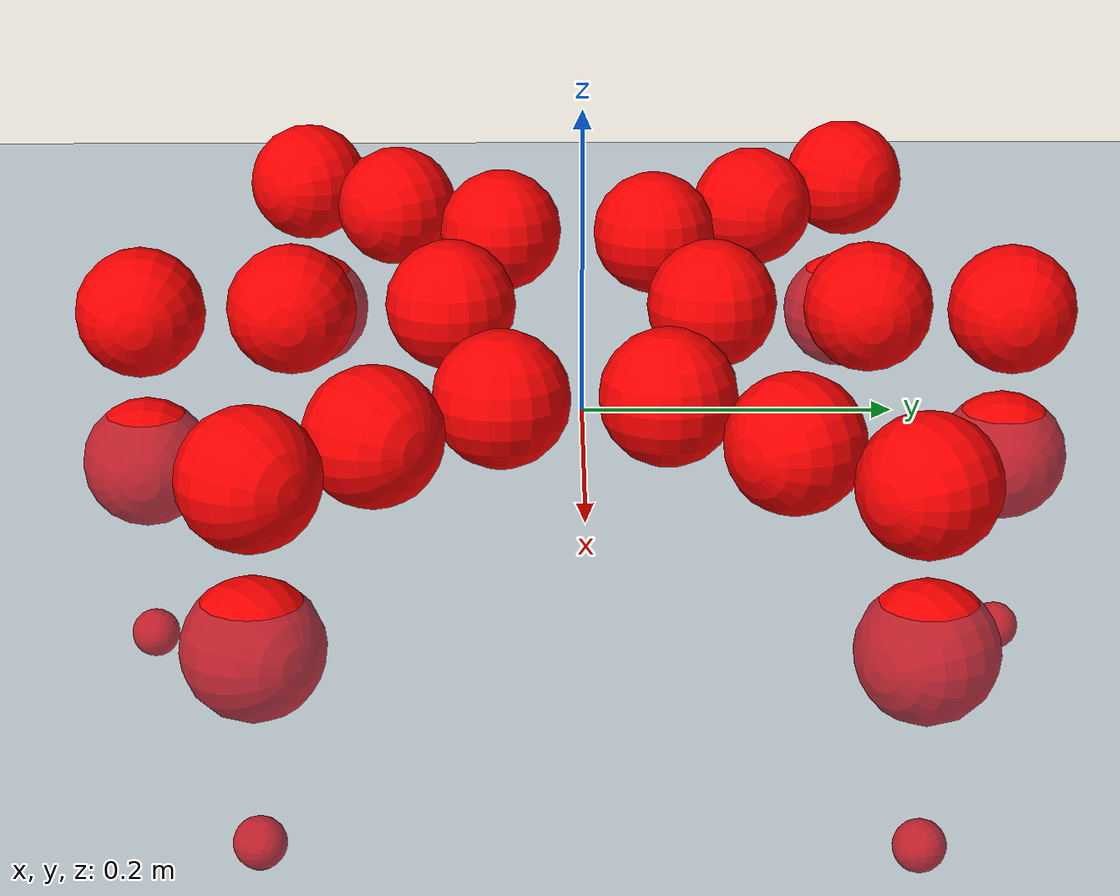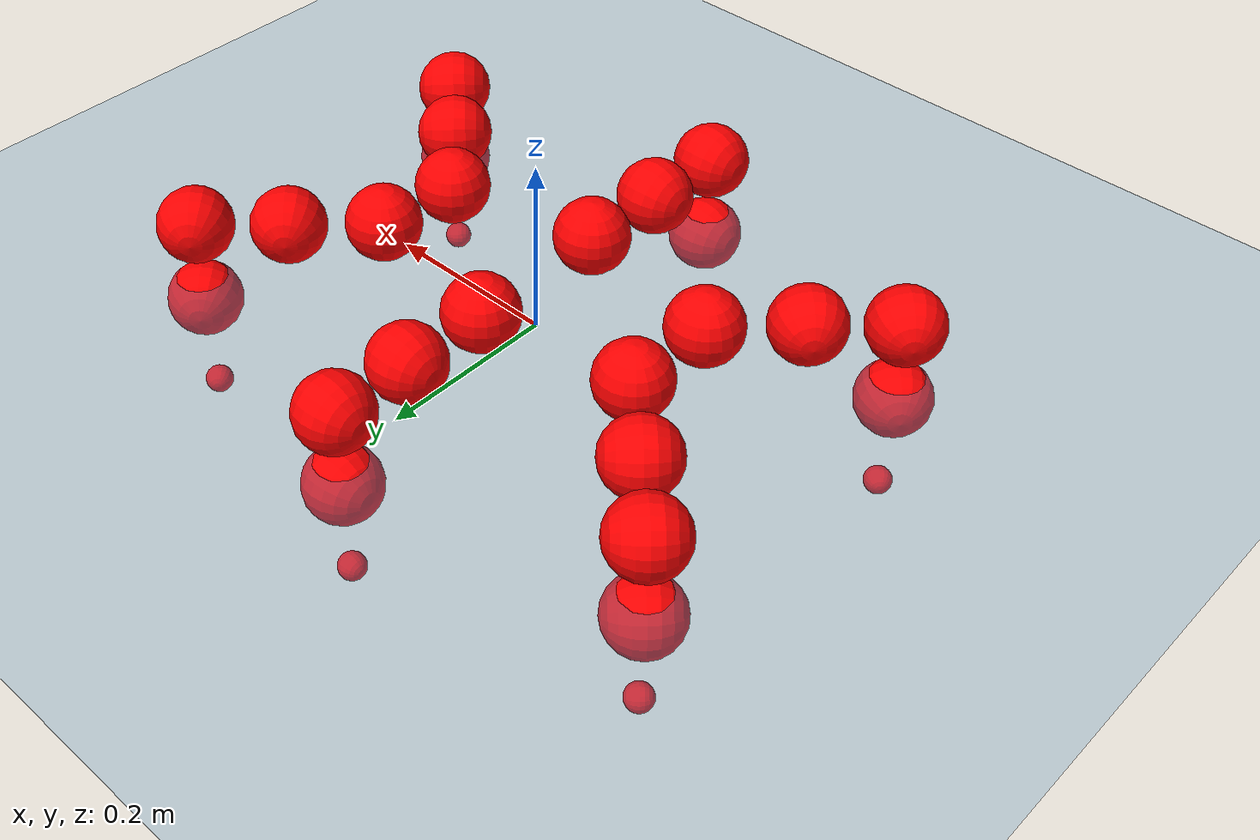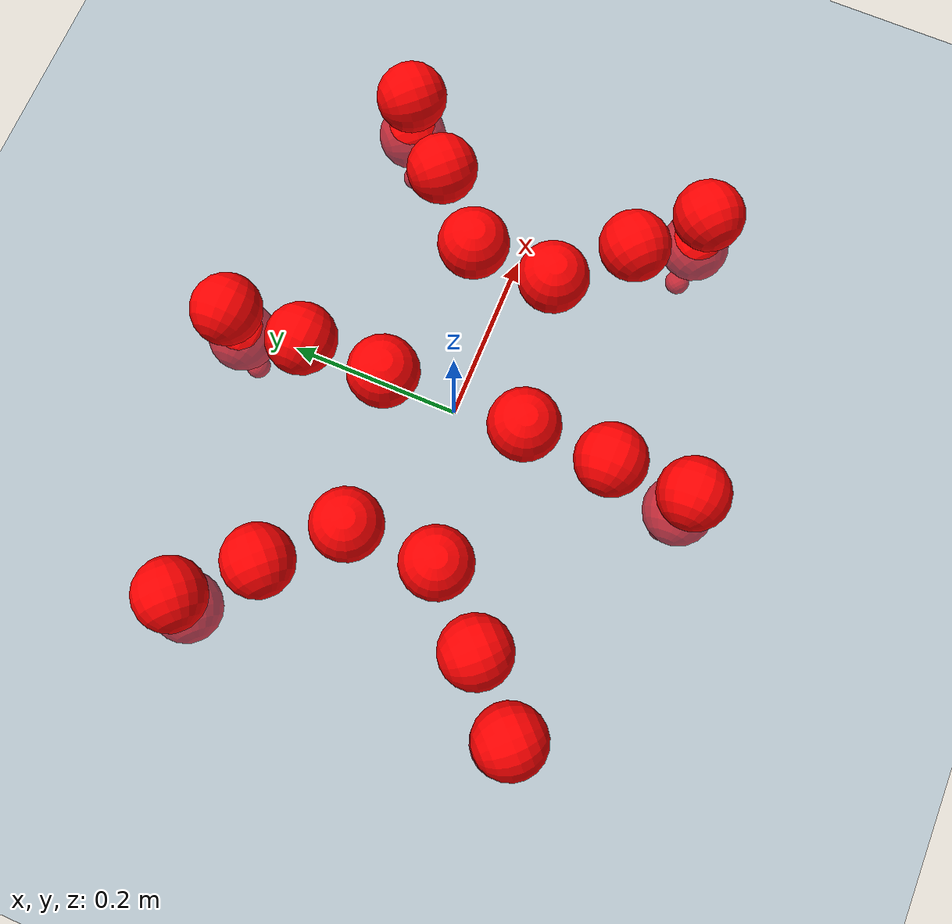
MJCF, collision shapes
<mujoco model="Golem">
  <compiler angle="radian" assetdir="assets" balanceinertia="true" inertiafromgeom="false"/>

  <option timestep="0.005" density="1.2" viscosity="2e-05"/>

  <size nkey="1"/>

  <visual>
    <quality shadowsize="8192"/>
    <map shadowclip="0.5"/>
  </visual>

  <default>
    <default class="/">
      <joint armature="0.01" damping="0.01" frictionloss="0.01"/>
      <geom contype="0" conaffinity="0" group="1" solref="-1000 -80"/>
      <site size="0.01 0.005 0.005" group="5"/>
      <general forcelimited="true" biastype="affine" gainprm="25" biasprm="0 -25 -0.5"/>
      <default class="visual">
        <geom type="mesh" group="2"/>
      </default>
      <default class="collision">
        <geom group="3"/>
      </default>
      <default class="foot">
        <geom size="0.01 0 0" condim="6" group="4" priority="1" solimp="0.015 1 0.01"/>
      </default>
      <default class="reward_collision_sphere">
        <geom group="5" rgba="1 0 0 1"/>
      </default>
    </default>
  </default>

  <asset>
    <texture type="skybox" colorspace="auto" name="//unnamed_texture_0" builtin="gradient" rgb1="0.95 0.95 0.95" rgb2="0.95 0.95 0.95" width="100" height="600"/>
    <texture type="2d" colorspace="auto" name="texplane" builtin="checker" rgb1="0.345 0.575 0.748" rgb2="0.345 0.575 0.748" markrgb="1 1 1" width="512" height="512"/>
    <material name="MatPlane" class="/" texture="texplane" texuniform="true" texrepeat="2 2" specular="0.9"/>
    <mesh name="body" class="/" file="body.stl" scale="0.001 0.001 0.001"/>
    <mesh name="coxa" class="/" file="coxa.stl" scale="0.001 0.001 0.001"/>
    <mesh name="femur" class="/" file="femur.stl" scale="0.001 0.001 0.001"/>
    <mesh name="tibia" class="/" file="tibia.stl" scale="0.001 0.001 0.001"/>
    <mesh name="tarsus" class="/" file="tarsus.stl" scale="0.001 0.001 0.001"/>
  </asset>

  <worldbody>
    <geom name="floor" class="/" size="100 100 0.125" type="plane" group="0" material="MatPlane"/>
    <light name="toplight_shadow" class="/" pos="0 0 5" dir="0.0990148 0.0990148 -0.990148" type="directional" ambient="0.04 0.04 0.04" diffuse="0.55 0.55 0.55" specular="0.12 0.12 0.12"/>
    <light name="toplight_fill" class="/" pos="0 0 5" dir="0.0990148 0.0990148 -0.990148" type="directional" castshadow="false" ambient="0.04 0.04 0.04" diffuse="0.3 0.3 0.3" specular="0.08 0.08 0.08"/>
    <body name="trunk" pos="-0.0018334 -0.00140764 -0.00105255" quat="1 -0.000107967 6.61404e-05 -4.13776e-05">
      <inertial pos="0.00220382 -0.00103985 -0.00427674" quat="0.999971 -0.000725913 0.00603592 -0.00460368" mass="4.28823" diaginertia="0.0182705 0.00582439 0.0177946"/>
      <joint name="//unnamed_joint_0" type="free"/>
      <geom name="//unnamed_geom_1" class="/" pos="0 0 0.0713005" quat="1 0 0 0" type="mesh" rgba="0.9 0.9 0.9 1" mesh="body"/>
      <site name="imu" class="/" pos="0.15941 0.00910041 0.110894" size="0.0104593"/>
      <camera name="track" class="/" pos="0 -1.7969 0" quat="0.707107 0.707107 0 0" mode="trackcom"/>
      <camera name="ego_camera" class="/" pos="0.146283 0 0.111407" quat="-0.5 -0.5 0.5 0.5"/>
      <body name="coxa_RR" pos="-0.200305 -0.0772722 0.0711666" quat="0.382622 -0.000132751 -9.17475e-05 -0.923905">
        <inertial pos="5.45468e-05 -0.000805949 1.60932e-05" quat="1 0.000169316 -0.000341694 -0.000165865" mass="0.226164" diaginertia="0.0174489 0.00579229 0.0164312"/>
        <joint name="coxa_joint_RR" class="/" pos="0 0 0" axis="-0.000473011 -0.000944188 -0.999999" range="-3.13908 3.13601" armature="0.0108482" damping="0.00551014" frictionloss="0.0105303"/>
        <geom name="//unnamed_geom_2" class="/" type="mesh" rgba="0.2 0.2 0.2 1" mesh="coxa"/>
        <geom name="//unnamed_geom_3" class="reward_collision_sphere" size="0.0418371" pos="-0.0337577 0 0"/>
        <body name="femur_RR" pos="0.0690185 0.00295922 -0.00208369" quat="0.499959 -0.500534 0.499385 0.500122">
          <inertial pos="-0.00273641 -3.91595e-05 -0.0024491" quat="0.999914 -9.82239e-05 0.012907 0.00241567" mass="0.221972" diaginertia="0.0173552 0.00563346 0.0167019"/>
          <joint name="femur_joint_RR" class="/" pos="0 0 0" axis="-0.000836619 -0.000783413 -0.999999" stiffness="0.00904116" range="-3.12213 3.14574" armature="0.010487" damping="0.00694093" frictionloss="0.010467"/>
          <geom name="//unnamed_geom_4" class="/" type="mesh" rgba="0.9 0.9 0.9 1" mesh="femur"/>
          <geom name="//unnamed_geom_5" class="reward_collision_sphere" size="0.0418371"/>
          <body name="tibia_RR" pos="0.00165287 -0.0972034 -0.00213121" quat="-2.11615e-06 1 -8.16167e-07 -1.54104e-05">
            <inertial pos="0.000328294 0.000338732 -0.00273077" quat="0.999977 0.00207043 -0.00314408 -0.00569567" mass="0.235821" diaginertia="0.0188086 0.00619284 0.0175833"/>
            <joint name="tibia_joint_RR" class="/" pos="0 0 0" axis="-0.00490652 0.0132847 0.9999" range="-3.16906 3.13599" armature="0.0101762" damping="0.00306936" frictionloss="0.00919121"/>
            <geom name="//unnamed_geom_6" class="/" type="mesh" rgba="0.2 0.2 0.2 1" mesh="tibia"/>
            <geom name="//unnamed_geom_7" class="reward_collision_sphere" size="0.0418371"/>
            <body name="tarsus_RR" pos="0.0971704 0.000643964 -0.000180055" quat="1 -8.64961e-05 5.88036e-05 0.000214979">
              <inertial pos="0.0686725 0.000594856 0.000626386" quat="0.508888 0.502524 0.497385 0.49103" mass="0.230388" diaginertia="0.0177124 0.00576341 0.0173521"/>
              <joint name="tarsus_joint_RR" class="/" pos="0 0 0" axis="-0.0096687 0.00277859 0.999949" range="-3.14184 3.1038" armature="0.0104464" damping="0.0447061" frictionloss="0.0100078"/>
              <geom name="//unnamed_geom_8" class="/" type="mesh" rgba="0.9 0.9 0.9 1" mesh="tarsus"/>
              <geom name="foot_1" class="foot" size="0.0105303" pos="0.126029 0 0" quat="0 -0.707107 0 0.707107"/>
              <geom name="//unnamed_geom_10" class="reward_collision_sphere" size="0.0418371"/>
              <geom name="//unnamed_geom_11" class="reward_collision_sphere" size="0.0156889" pos="0.120965 0 0"/>
              <site name="foot_1" class="foot" pos="0.126029 0 0" quat="0 -0.707107 0 0.707107" size="0.0104593"/>
            </body>
          </body>
        </body>
      </body>
      <body name="coxa_RM" pos="0.00108584 -0.116834 0.0732903" quat="0.706287 -0.000109218 0.000806259 -0.707925">
        <inertial pos="-0.00246649 0.000485799 -0.00267843" quat="0.999933 0.0110976 -0.000203173 0.00343045" mass="0.229451" diaginertia="0.0171862 0.0058318 0.0171124"/>
        <joint name="coxa_joint_RM" class="/" pos="0 0 0" axis="-0.00415965 0.00147046 -0.99999" range="-3.11801 3.14929" armature="0.0100335" damping="0.00882949" frictionloss="0.0103194"/>
        <geom name="//unnamed_geom_12" class="/" type="mesh" rgba="0.2 0.2 0.2 1" mesh="coxa"/>
        <geom name="//unnamed_geom_13" class="reward_collision_sphere" size="0.0418371" pos="-0.0337577 0 0"/>
        <body name="femur_RM" pos="0.068365 0.000925373 -0.00231687" quat="0.499515 -0.499381 0.500562 0.50054">
          <inertial pos="0.00278167 -0.000269058 -0.000106814" quat="0.99991 -0.010364 -0.00105525 0.00850951" mass="0.23204" diaginertia="0.017842 0.00567359 0.0173834"/>
          <joint name="femur_joint_RM" class="/" pos="0 0 0" axis="0.00586443 -0.0112029 -0.99992" range="-3.12835 3.14592" armature="0.0103175" damping="0.00660939" frictionloss="0.0106402"/>
          <geom name="//unnamed_geom_14" class="/" type="mesh" rgba="0.9 0.9 0.9 1" mesh="femur"/>
          <geom name="//unnamed_geom_15" class="reward_collision_sphere" size="0.0418371"/>
          <body name="tibia_RM" pos="0.00176952 -0.0966769 0.000249315" quat="-1.57847e-05 1 4.08714e-06 2.89974e-05">
            <inertial pos="-0.00258232 -0.000285689 -0.00143427" quat="0.999989 -0.00403117 0.0023525 0.000365468" mass="0.229712" diaginertia="0.0183725 0.00562287 0.0163746"/>
            <joint name="tibia_joint_RM" class="/" pos="0 0 0" axis="-0.00566866 0.00449419 0.999974" range="-3.12967 3.13977" armature="0.0104116" damping="0.0113689" frictionloss="0.0105481"/>
            <geom name="//unnamed_geom_16" class="/" type="mesh" rgba="0.2 0.2 0.2 1" mesh="tibia"/>
            <geom name="//unnamed_geom_17" class="reward_collision_sphere" size="0.0418371"/>
            <body name="tarsus_RM" pos="0.101531 -5.23297e-05 -0.000711259" quat="1 3.57231e-05 -0.000138092 3.72639e-05">
              <inertial pos="0.0686634 0.00107889 0.00016225" quat="0.497874 0.504274 0.500281 0.497542" mass="0.226578" diaginertia="0.0172922 0.00581628 0.0175281"/>
              <joint name="tarsus_joint_RM" class="/" pos="0 0 0" axis="0.0101117 -0.00733648 0.999922" range="-3.13754 3.1397" armature="0.0102663" damping="0.00457011" frictionloss="0.010503"/>
              <geom name="//unnamed_geom_18" class="/" type="mesh" rgba="0.9 0.9 0.9 1" mesh="tarsus"/>
              <geom name="foot_2" class="foot" size="0.00948556" pos="0.126029 0 0" quat="0 -0.707107 0 0.707107"/>
              <geom name="//unnamed_geom_20" class="reward_collision_sphere" size="0.0418371"/>
              <geom name="//unnamed_geom_21" class="reward_collision_sphere" size="0.0156889" pos="0.120965 0 0"/>
              <site name="foot_2" class="foot" pos="0.126029 0 0" quat="0 -0.707107 0 0.707107" size="0.0104593"/>
            </body>
          </body>
        </body>
      </body>
      <body name="coxa_RF" pos="0.199738 -0.0722336 0.0696295" quat="0.923888 -9.96478e-06 0.000123403 -0.382664">
        <inertial pos="-0.00249896 -0.00123633 0.000267575" quat="0.999912 -0.00792182 -0.00232706 -0.0103838" mass="0.235216" diaginertia="0.0183658 0.00564857 0.0172048"/>
        <joint name="coxa_joint_RF" class="/" pos="0 0 0" axis="-0.00298928 -0.00226891 -0.999993" range="-3.14327 3.13526" armature="0.0115702" damping="0.0119524" frictionloss="0.0107377"/>
        <geom name="//unnamed_geom_22" class="/" type="mesh" rgba="0.2 0.2 0.2 1" mesh="coxa"/>
        <geom name="//unnamed_geom_23" class="reward_collision_sphere" size="0.0418371" pos="-0.0337577 0 0"/>
        <body name="femur_RF" pos="0.0676733 -0.000942558 0.00193858" quat="0.500007 -0.500087 0.499614 0.500292">
          <inertial pos="0.00118986 0.00261049 0.00110041" quat="1 -0.000193266 -0.000277485 1.20503e-06" mass="0.222393" diaginertia="0.0183624 0.00563958 0.0172047"/>
          <joint name="femur_joint_RF" class="/" pos="0 0 0" axis="0.00895915 0.000206895 -0.99996" range="-3.16061 3.09922" armature="0.0103355" damping="0.00429959" frictionloss="0.01097"/>
          <geom name="//unnamed_geom_24" class="/" type="mesh" rgba="0.9 0.9 0.9 1" mesh="femur"/>
          <geom name="//unnamed_geom_25" class="reward_collision_sphere" size="0.0418371"/>
          <body name="tibia_RF" pos="0.000398215 -0.0946136 0.00186362" quat="4.42948e-07 1 -2.49028e-05 9.95129e-06">
            <inertial pos="-0.00221516 -0.00224466 0.00255061" quat="0.99998 -0.00421864 0.000812762 -0.00467138" mass="0.234865" diaginertia="0.0180402 0.0058492 0.0172484"/>
            <joint name="tibia_joint_RF" class="/" pos="0 0 0" axis="0.00380209 -0.00542829 0.999978" range="-3.13248 3.09134" armature="0.0108338" damping="0.00665651" frictionloss="0.0106377"/>
            <geom name="//unnamed_geom_26" class="/" type="mesh" rgba="0.2 0.2 0.2 1" mesh="tibia"/>
            <geom name="//unnamed_geom_27" class="reward_collision_sphere" size="0.0418371"/>
            <body name="tarsus_RF" pos="0.100333 0.00256803 -0.00222572" quat="0.999999 0.00053709 -0.000193478 -0.000859078">
              <inertial pos="0.0683955 -8.99591e-06 -0.000658813" quat="0.501583 0.496743 0.503467 0.498178" mass="0.228619" diaginertia="0.0181828 0.00606752 0.0166708"/>
              <joint name="tarsus_joint_RF" class="/" pos="0 0 0" axis="-0.00229724 0.00204583 0.999995" range="-3.15998 3.13533" armature="0.0117904" damping="0.00654022" frictionloss="0.0117798"/>
              <geom name="//unnamed_geom_28" class="/" type="mesh" rgba="0.9 0.9 0.9 1" mesh="tarsus"/>
              <geom name="foot_3" class="foot" size="0.0115251" pos="0.126029 0 0" quat="0 -0.707107 0 0.707107"/>
              <geom name="//unnamed_geom_30" class="reward_collision_sphere" size="0.0418371"/>
              <geom name="//unnamed_geom_31" class="reward_collision_sphere" size="0.0156889" pos="0.120965 0 0"/>
              <site name="foot_3" class="foot" pos="0.126029 0 0" quat="0 -0.707107 0 0.707107" size="0.0104593"/>
            </body>
          </body>
        </body>
      </body>
      <body name="coxa_LR" pos="-0.199516 0.0762438 0.0696964" quat="0.382482 -4.58361e-05 0.00126323 0.923962">
        <inertial pos="0.000976163 -0.00127176 -0.00231103" quat="0.999926 -0.00326979 -0.00262155 0.0114153" mass="0.215038" diaginertia="0.0175439 0.00569263 0.0164458"/>
        <joint name="coxa_joint_LR" class="/" pos="0 0 0" axis="-0.000841621 -0.00330657 -0.999994" stiffness="0.00420417" range="-3.12344 3.19101" armature="0.0116999" damping="0.0106949" frictionloss="0.00909396"/>
        <geom name="//unnamed_geom_32" class="/" type="mesh" rgba="0.2 0.2 0.2 1" mesh="coxa"/>
        <geom name="//unnamed_geom_33" class="reward_collision_sphere" size="0.0418371" pos="-0.0337577 0 0"/>
        <body name="femur_LR" pos="0.0684709 0.000230918 -0.0017594" quat="0.500106 -0.500062 0.50003 0.499802">
          <inertial pos="-0.000850873 5.611e-05 -0.000181655" quat="0.99998 0.00326556 0.0036472 -0.00396581" mass="0.225807" diaginertia="0.0177572 0.00595079 0.016892"/>
          <joint name="femur_joint_LR" class="/" pos="0 0 0" axis="-5.3269e-05 0.00320317 0.999995" range="-3.13472 3.09081" armature="0.0114123" damping="0.00238461" frictionloss="0.010855"/>
          <geom name="//unnamed_geom_34" class="/" type="mesh" rgba="0.9 0.9 0.9 1" mesh="femur"/>
          <geom name="//unnamed_geom_35" class="reward_collision_sphere" size="0.0418371"/>
          <body name="tibia_LR" pos="-0.0020907 -0.0989929 -0.00115655" quat="-0.000894549 0.999999 0.000162193 0.00087139">
            <inertial pos="0.00173964 0.00281772 0.000223048" quat="0.999921 -0.000892056 0.000744833 -0.012536" mass="0.222273" diaginertia="0.0186011 0.00603754 0.0165948"/>
            <joint name="tibia_joint_LR" class="/" pos="0 0 0" axis="-0.00488193 -0.00169568 -0.999987" range="-3.14191 3.14494" armature="0.0101471" damping="0.007076" frictionloss="0.0110953"/>
            <geom name="//unnamed_geom_36" class="/" type="mesh" rgba="0.2 0.2 0.2 1" mesh="tibia"/>
            <geom name="//unnamed_geom_37" class="reward_collision_sphere" size="0.0418371"/>
            <body name="tarsus_LR" pos="0.101793 0.00195616 -0.000598038" quat="1 -9.05023e-05 8.65686e-05 -6.68658e-05">
              <inertial pos="0.0673704 -0.00127374 0.000432974" quat="0.501461 0.498516 0.501012 0.499004" mass="0.223348" diaginertia="0.017699 0.00567887 0.0166823"/>
              <joint name="tarsus_joint_LR" class="/" pos="0 0 0" axis="-0.00127207 8.45676e-05 -0.999999" range="-3.11988 3.16163" armature="0.00895648" damping="0.0280799" frictionloss="0.0106716"/>
              <geom name="//unnamed_geom_38" class="/" type="mesh" rgba="0.9 0.9 0.9 1" mesh="tarsus"/>
              <geom name="foot_4" class="foot" size="0.0101058" pos="0.126029 0 0" quat="0.707107 0 -0.707107 0"/>
              <geom name="//unnamed_geom_40" class="reward_collision_sphere" size="0.0418371"/>
              <geom name="//unnamed_geom_41" class="reward_collision_sphere" size="0.0156889" pos="0.120965 0 0"/>
              <site name="foot_4" class="foot" pos="0.126029 0 0" quat="0.707107 0 -0.707107 0" size="0.0104593"/>
            </body>
          </body>
        </body>
      </body>
      <body name="coxa_LM" pos="-0.00247449 0.118457 0.072257" quat="0.707362 -0.000763023 -0.000681197 0.706851">
        <inertial pos="0.00294618 -0.00273308 -0.000596714" quat="0.999914 0.0105228 7.43563e-05 -0.00781179" mass="0.231984" diaginertia="0.017678 0.00586199 0.0172558"/>
        <joint name="coxa_joint_LM" class="/" pos="0 0 0" axis="0.00236457 0.00045091 -0.999997" stiffness="0.00533797" range="-3.14799 3.13911" armature="0.0116428" damping="0" frictionloss="0.010141"/>
        <geom name="//unnamed_geom_42" class="/" type="mesh" rgba="0.2 0.2 0.2 1" mesh="coxa"/>
        <geom name="//unnamed_geom_43" class="reward_collision_sphere" size="0.0418371" pos="-0.0337577 0 0"/>
        <body name="femur_LM" pos="0.0668247 6.32715e-05 -0.00189987" quat="0.499807 -0.49922 0.500439 0.500532">
          <inertial pos="-0.00257782 -0.00042828 -0.00273969" quat="0.999976 0.00438066 -0.00527581 -0.00107451" mass="0.242947" diaginertia="0.0187654 0.00596406 0.0175955"/>
          <joint name="femur_joint_LM" class="/" pos="0 0 0" axis="-0.00199958 -0.00169646 0.999997" stiffness="0.000128668" range="-3.10611 3.1218" armature="0.0114773" damping="0.000631956" frictionloss="0.0104699"/>
          <geom name="//unnamed_geom_44" class="/" type="mesh" rgba="0.9 0.9 0.9 1" mesh="femur"/>
          <geom name="//unnamed_geom_45" class="reward_collision_sphere" size="0.0418371"/>
          <body name="tibia_LM" pos="0.00202062 -0.0930649 0.000611925" quat="-0.000188034 1 0.000132602 -9.33976e-05">
            <inertial pos="0.00278984 0.00122152 0.00239939" quat="1 0.000232504 -1.26337e-05 8.87832e-05" mass="0.227391" diaginertia="0.0178603 0.00562924 0.0175709"/>
            <joint name="tibia_joint_LM" class="/" pos="0 0 0" axis="0.00400395 0.00286086 -0.999988" range="-3.15689 3.13762" armature="0.011475" damping="0" frictionloss="0.0092042"/>
            <geom name="//unnamed_geom_46" class="/" type="mesh" rgba="0.2 0.2 0.2 1" mesh="tibia"/>
            <geom name="//unnamed_geom_47" class="reward_collision_sphere" size="0.0418371"/>
            <body name="tarsus_LM" pos="0.098874 -0.00262698 0.00209356" quat="1 -0.000517298 2.19586e-05 -0.000822908">
              <inertial pos="0.0672989 0.000444737 0.00164355" quat="0.49965 0.500032 0.501655 0.498658" mass="0.23666" diaginertia="0.0179989 0.00622263 0.0176987"/>
              <joint name="tarsus_joint_LM" class="/" pos="0 0 0" axis="0.0111029 -0.00258354 -0.999935" stiffness="0.00980014" range="-3.18448 3.12377" armature="0.0105154" damping="0.0107532" frictionloss="0.0103318"/>
              <geom name="//unnamed_geom_48" class="/" type="mesh" rgba="0.9 0.9 0.9 1" mesh="tarsus"/>
              <geom name="foot_5" class="foot" size="0.0104244" pos="0.126029 0 0" quat="0.707107 0 -0.707107 0"/>
              <geom name="//unnamed_geom_50" class="reward_collision_sphere" size="0.0418371"/>
              <geom name="//unnamed_geom_51" class="reward_collision_sphere" size="0.0156889" pos="0.120965 0 0"/>
              <site name="foot_5" class="foot" pos="0.126029 0 0" quat="0.707107 0 -0.707107 0" size="0.0104593"/>
            </body>
          </body>
        </body>
      </body>
      <body name="coxa_LF" pos="0.202299 0.074553 0.0715452" quat="0.924394 -0.00046919 0.000286959 0.381438">
        <inertial pos="0.000618199 0.00273777 -0.000504662" quat="0.999998 0.00174841 0.000585803 0.000906874" mass="0.228818" diaginertia="0.0182634 0.00622858 0.0177888"/>
        <joint name="coxa_joint_LF" class="/" pos="0 0 0" axis="-0.010463 0.00765259 -0.999916" range="-3.14571 3.13542" armature="0.0116242" damping="0.00603515" frictionloss="0.010049"/>
        <geom name="//unnamed_geom_52" class="/" type="mesh" rgba="0.2 0.2 0.2 1" mesh="coxa"/>
        <geom name="//unnamed_geom_53" class="reward_collision_sphere" size="0.0418371" pos="-0.0337577 0 0"/>
        <body name="femur_LF" pos="0.0677526 -0.00190982 -0.00307392" quat="0.499352 -0.500107 0.50102 0.49952">
          <inertial pos="0.00203181 0.001034 0.00250592" quat="0.999907 -0.00132383 0.00211698 -0.0134396" mass="0.227564" diaginertia="0.0176633 0.00602935 0.0171858"/>
          <joint name="femur_joint_LF" class="/" pos="0 0 0" axis="-0.00709101 -0.00785557 0.999944" range="-3.1457 3.08545" armature="0.0104018" damping="0" frictionloss="0.00992855"/>
          <geom name="//unnamed_geom_54" class="/" type="mesh" rgba="0.9 0.9 0.9 1" mesh="femur"/>
          <geom name="//unnamed_geom_55" class="reward_collision_sphere" size="0.0418371"/>
          <body name="tibia_LF" pos="-0.00113857 -0.0989573 -0.00104521" quat="-0.00124055 0.999999 0.000357798 0.000266906">
            <inertial pos="-0.00106249 -0.00271677 -0.000345427" quat="0.999989 -0.0038293 -0.000893933 0.00251489" mass="0.227696" diaginertia="0.0178124 0.00587071 0.0173051"/>
            <joint name="tibia_joint_LF" class="/" pos="0 0 0" axis="-0.00581771 -0.013542 -0.999891" range="-3.19311 3.1404" armature="0.0114276" damping="0.00492101" frictionloss="0.0119034"/>
            <geom name="//unnamed_geom_56" class="/" type="mesh" rgba="0.2 0.2 0.2 1" mesh="tibia"/>
            <geom name="//unnamed_geom_57" class="reward_collision_sphere" size="0.0418371"/>
            <body name="tarsus_LF" pos="0.0994774 0.00231983 -0.0011794" quat="0.999999 0.000977783 0.000572937 0.000290725">
              <inertial pos="0.0672271 0.000601111 -0.000540533" quat="0.499087 0.500676 0.500008 0.500227" mass="0.228477" diaginertia="0.0175664 0.00574855 0.0164914"/>
              <joint name="tarsus_joint_LF" class="/" pos="0 0 0" axis="0.0120779 0.00732906 -0.9999" stiffness="0.0284771" range="-3.14642 3.08578" armature="0.0102242" damping="0.0286851" frictionloss="0.0109087"/>
              <geom name="//unnamed_geom_58" class="/" type="mesh" rgba="0.9 0.9 0.9 1" mesh="tarsus"/>
              <geom name="foot_6" class="foot" size="0.00938341" pos="0.126029 0 0" quat="0.707107 0 -0.707107 0"/>
              <geom name="//unnamed_geom_60" class="reward_collision_sphere" size="0.0418371"/>
              <geom name="//unnamed_geom_61" class="reward_collision_sphere" size="0.0156889" pos="0.120965 0 0"/>
              <site name="foot_6" class="foot" pos="0.126029 0 0" quat="0.707107 0 -0.707107 0" size="0.0104593"/>
            </body>
          </body>
        </body>
      </body>
    </body>
  </worldbody>

  <contact>
    <pair class="/" geom1="floor" geom2="foot_1" name="//unnamed_contact_0"/>
    <pair class="/" geom1="floor" geom2="foot_2" name="//unnamed_contact_1"/>
    <pair class="/" geom1="floor" geom2="foot_3" name="//unnamed_contact_2"/>
    <pair class="/" geom1="floor" geom2="foot_4" name="//unnamed_contact_3"/>
    <pair class="/" geom1="floor" geom2="foot_5" name="//unnamed_contact_4"/>
    <pair class="/" geom1="floor" geom2="foot_6" name="//unnamed_contact_5"/>
  </contact>

  <actuator>
    <general name="coxa_joint_RR" class="/" joint="coxa_joint_RR" forcerange="-6.85655 6.85655" gainprm="24.8068" biasprm="0 -24.8068 -0.517744"/>
    <general name="femur_joint_RR" class="/" joint="femur_joint_RR" forcerange="-7.8005 7.8005" gainprm="24.8068" biasprm="0 -24.8068 -0.517744"/>
    <general name="tibia_joint_RR" class="/" joint="tibia_joint_RR" forcerange="-6.90423 6.90423" gainprm="24.8068" biasprm="0 -24.8068 -0.517744"/>
    <general name="tarsus_joint_RR" class="/" joint="tarsus_joint_RR" forcerange="-7.96499 7.96499" gainprm="24.8068" biasprm="0 -24.8068 -0.517744"/>
    <general name="coxa_joint_RM" class="/" joint="coxa_joint_RM" forcerange="-7.65641 7.65641" gainprm="24.8068" biasprm="0 -24.8068 -0.517744"/>
    <general name="femur_joint_RM" class="/" joint="femur_joint_RM" forcerange="-7.67728 7.67728" gainprm="24.8068" biasprm="0 -24.8068 -0.517744"/>
    <general name="tibia_joint_RM" class="/" joint="tibia_joint_RM" forcerange="-6.84606 6.84606" gainprm="24.8068" biasprm="0 -24.8068 -0.517744"/>
    <general name="tarsus_joint_RM" class="/" joint="tarsus_joint_RM" forcerange="-8.38962 8.38962" gainprm="24.8068" biasprm="0 -24.8068 -0.517744"/>
    <general name="coxa_joint_RF" class="/" joint="coxa_joint_RF" forcerange="-7.32894 7.32894" gainprm="24.8068" biasprm="0 -24.8068 -0.517744"/>
    <general name="femur_joint_RF" class="/" joint="femur_joint_RF" forcerange="-7.4817 7.4817" gainprm="24.8068" biasprm="0 -24.8068 -0.517744"/>
    <general name="tibia_joint_RF" class="/" joint="tibia_joint_RF" forcerange="-8.42478 8.42478" gainprm="24.8068" biasprm="0 -24.8068 -0.517744"/>
    <general name="tarsus_joint_RF" class="/" joint="tarsus_joint_RF" forcerange="-7.75447 7.75447" gainprm="24.8068" biasprm="0 -24.8068 -0.517744"/>
    <general name="coxa_joint_LR" class="/" joint="coxa_joint_LR" forcerange="-7.69144 7.69144" gainprm="24.8068" biasprm="0 -24.8068 -0.517744"/>
    <general name="femur_joint_LR" class="/" joint="femur_joint_LR" forcerange="-6.89028 6.89028" gainprm="24.8068" biasprm="0 -24.8068 -0.517744"/>
    <general name="tibia_joint_LR" class="/" joint="tibia_joint_LR" forcerange="-7.53669 7.53669" gainprm="24.8068" biasprm="0 -24.8068 -0.517744"/>
    <general name="tarsus_joint_LR" class="/" joint="tarsus_joint_LR" forcerange="-7.08175 7.08175" gainprm="24.8068" biasprm="0 -24.8068 -0.517744"/>
    <general name="coxa_joint_LM" class="/" joint="coxa_joint_LM" forcerange="-7.53509 7.53509" gainprm="24.8068" biasprm="0 -24.8068 -0.517744"/>
    <general name="femur_joint_LM" class="/" joint="femur_joint_LM" forcerange="-7.88129 7.88129" gainprm="24.8068" biasprm="0 -24.8068 -0.517744"/>
    <general name="tibia_joint_LM" class="/" joint="tibia_joint_LM" forcerange="-6.9879 6.9879" gainprm="24.8068" biasprm="0 -24.8068 -0.517744"/>
    <general name="tarsus_joint_LM" class="/" joint="tarsus_joint_LM" forcerange="-7.94434 7.94434" gainprm="24.8068" biasprm="0 -24.8068 -0.517744"/>
    <general name="coxa_joint_LF" class="/" joint="coxa_joint_LF" forcerange="-7.71663 7.71663" gainprm="24.8068" biasprm="0 -24.8068 -0.517744"/>
    <general name="femur_joint_LF" class="/" joint="femur_joint_LF" forcerange="-7.35565 7.35565" gainprm="24.8068" biasprm="0 -24.8068 -0.517744"/>
    <general name="tibia_joint_LF" class="/" joint="tibia_joint_LF" forcerange="-8.20393 8.20393" gainprm="24.8068" biasprm="0 -24.8068 -0.517744"/>
    <general name="tarsus_joint_LF" class="/" joint="tarsus_joint_LF" forcerange="-7.56638 7.56638" gainprm="24.8068" biasprm="0 -24.8068 -0.517744"/>
  </actuator>

  <sensor>
    <gyro site="imu" name="imu_angular_velocity"/>
    <velocimeter site="imu" name="imu_linear_velocity"/>
    <framelinvel objtype="site" objname="foot_1" name="foot_1_global_linear_velocity"/>
    <framelinvel objtype="site" objname="foot_2" name="foot_2_global_linear_velocity"/>
    <framelinvel objtype="site" objname="foot_3" name="foot_3_global_linear_velocity"/>
    <framelinvel objtype="site" objname="foot_4" name="foot_4_global_linear_velocity"/>
    <framelinvel objtype="site" objname="foot_5" name="foot_5_global_linear_velocity"/>
    <framelinvel objtype="site" objname="foot_6" name="foot_6_global_linear_velocity"/>
  </sensor>

  <keyframe>
    <key name="home" qpos="0 0 0.1457 1 0 0 0 0 0 0 0 0 0 0 0 0 0 0 0 0 0 0 0 0 0 0 0 0 0 0 0"/>
  </keyframe>
</mujoco>
